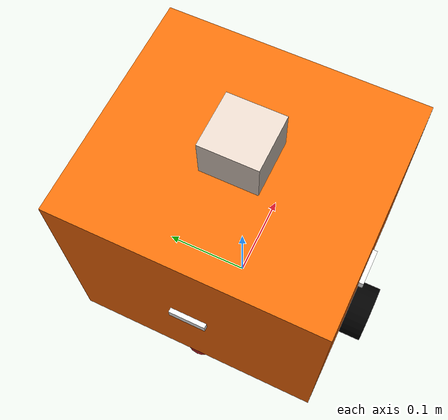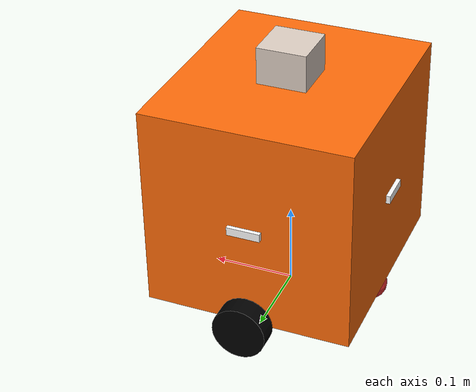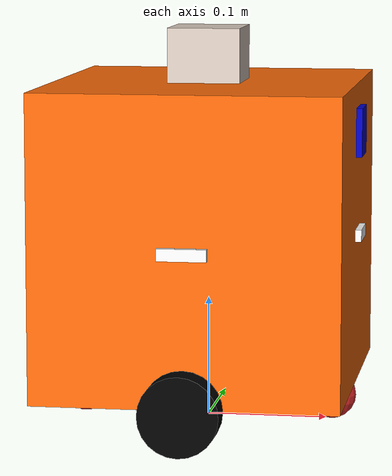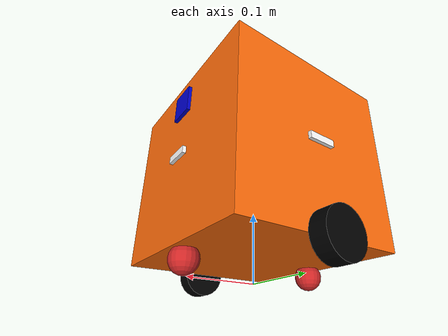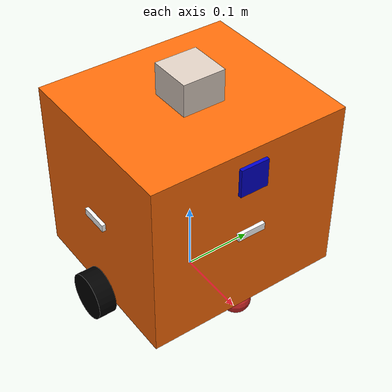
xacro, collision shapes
<?xml version="1.0" ?>
<robot name="piyabot" xmlns:xacro="http://ros.org/wiki/xacro">

  <xacro:property name="PI" value="3.1415926535897931"/>

  <xacro:property name="chassisHeight" value="0.25"/>
  <xacro:property name="chassisLength" value="0.25"/>
  <xacro:property name="chassisWidth" value="0.28"/>
  <xacro:property name="chassisMass" value="1.0"/>

  <xacro:property name="casterRadius" value="0.02"/>
  <xacro:property name="casterMass" value="0.1"/>

  <xacro:property name="wheelWidth" value="0.025"/>
  <xacro:property name="wheelRadius" value="0.0325"/>
  <xacro:property name="wheelPos" value="0"/>
  <xacro:property name="wheelMass" value="0.2"/>

  <xacro:property name="cameraHeight" value="0.04"/>
  <xacro:property name="cameraLength" value="0.01"/>
  <xacro:property name="cameraWidth" value="0.04"/>
  <xacro:property name="cameraMass" value="0.1"/>

  <xacro:property name="rplidarSize" value="0.06"/>
  <xacro:property name="rplidarMass" value="0.2"/>

  <xacro:property name="supportRplidarSize" value="0.1"/>
  <xacro:property name="supportRplidarHeight" value="0.04"/>
  <xacro:property name="supportRplidarMass" value="0.2"/>

  <xacro:property name="sonarHeight" value="0.01"/>
  <xacro:property name="sonarLength" value="0.01"/>
  <xacro:property name="sonarWidth" value="0.04"/>
  <xacro:property name="sonarMass" value="1e-5"/>

  <xacro:include filename="$(find bot_description)/urdf/materials.xacro"/>
  <xacro:include filename="$(find bot_description)/urdf/macros.xacro"/>
  <xacro:include filename="$(find bot_description)/urdf/piyabot_delta.gazebo.xacro"/>

  <link name="base_footprint"/>

  <joint name="base_joint" type="fixed">
    <parent link="base_footprint"/>
    <child link="chassis"/>
    <origin xyz="0 0 ${wheelRadius}" rpy="0 0 0"/>
  </joint>

  <link name="chassis">
    <collision>
      <origin xyz="0 0 ${chassisHeight/2}" rpy="0 0 0"/>
      <geometry>
	      <box size="${chassisLength} ${chassisWidth} ${chassisHeight}"/>
      </geometry>
    </collision>

    <visual>
      <origin xyz="0 0 ${chassisHeight/2}" rpy="0 0 0"/>
      <geometry>
	      <box size="${chassisLength} ${chassisWidth} ${chassisHeight}"/>
      </geometry>
      <material name="orange"/>
    </visual>

    <inertial>
      <origin xyz="0 0 ${chassisHeight/2}" rpy="0 0 0"/>
      <mass value="${chassisMass}"/>
      <xacro:box_inertia m="${chassisMass}" x="${chassisLength}" y="${chassisWidth}" z="${chassisHeight}"/>
    </inertial>
  </link>

  <joint name="imu_joint" type="fixed">
    <parent link="base_footprint"/>
    <child link="imu_link"/>
    <origin xyz="0 0 0" rpy="0 0 0"/>
  </joint>
  <link name="imu_link"/>

  <joint name="fixed_caster_back" type="fixed">
    <parent link="chassis"/>
    <child link="caster_back_wheel"/>
    <origin xyz="-${chassisLength/2 - casterRadius} 0 ${-wheelRadius + casterRadius}" rpy="0 0 0"/>
  </joint>

  <link name="caster_back_wheel">
    <collision>
      <origin xyz="0 0 0" rpy="0 0 0"/>
      <geometry>
	      <sphere radius="${casterRadius}"/>
      </geometry>
    </collision>

    <visual>
      <origin xyz="0 0 0" rpy="0 0 0"/>
      <geometry>
	      <sphere radius="${casterRadius}"/>
      </geometry>
    </visual>

    <inertial>
      <origin xyz="0 0 0" rpy="0 0 0"/>
      <mass value="${casterMass}"/>
      <xacro:sphere_inertia m="${casterMass}" r="${casterRadius}"/>
    </inertial>
  </link>

  <joint name="fixed_caster_front" type="fixed">
    <parent link="chassis"/>
    <child link="caster_front_wheel"/>
    <origin xyz="${chassisLength/2 - casterRadius} 0 ${-wheelRadius + casterRadius}" rpy="0 0 0"/>
  </joint>

  <link name="caster_front_wheel">
    <collision>
      <origin xyz="0 0 0" rpy="0 0 0"/>
      <geometry>
	      <sphere radius="${casterRadius}"/>
      </geometry>
    </collision>

    <visual>
      <origin xyz="0 0 0" rpy="0 0 0"/>
      <geometry>
	      <sphere radius="${casterRadius}"/>
      </geometry>
    </visual>

    <inertial>
      <origin xyz="0 0 0" rpy="0 0 0"/>
      <mass value="${casterMass}"/>
      <xacro:sphere_inertia m="${casterMass}" r="${casterRadius}"/>
    </inertial>
  </link>

  <xacro:wheel lr="left" tY="-1"/>
  <xacro:wheel lr="right" tY="1"/>

  <joint name="camera_joint" type="fixed">
    <origin xyz="${chassisLength/2} 0 ${chassisHeight -cameraHeight/2 -0.02}" rpy="0 0 0"/>
    <parent link="chassis"/>
    <child link="camera"/>
  </joint>

  <link name="camera">
    <collision>
      <origin xyz="0 0 0" rpy="0 0 0"/>
      <geometry>
	        <box size="${cameraLength} ${cameraWidth} ${cameraHeight}"/>
      </geometry>
    </collision>

    <visual>
      <origin xyz="0 0 0" rpy="0 0 0"/>
      <geometry>
	        <box size="${cameraLength} ${cameraWidth} ${cameraHeight}"/>
      </geometry>
      <material name="blue"/>
    </visual>

    <inertial>
      <mass value="${cameraMass}" />
      <origin xyz="0 0 0" rpy="0 0 0"/>
      <xacro:box_inertia m="${cameraMass}" x="${cameraLength}" y="${cameraWidth}" z="${cameraHeight}" />
    </inertial>
  </link>

  <joint name="rplidar_joint" type="fixed">
    <origin xyz="0 0 ${chassisHeight + rplidarSize/4}" rpy="0 0 0"/>
    <parent link="chassis"/>
    <child link="rplidar"/>
  </joint>

  <link name="rplidar">
    <collision>
      <origin xyz="0 0 0" rpy="0 0 0"/>
      <geometry>
	        <box size="${rplidarSize} ${rplidarSize} ${rplidarSize}"/>
      </geometry>
    </collision>

    <visual>
      <origin xyz="0 0 0" rpy="0 0 ${PI}"/>
      <geometry>
          <mesh filename="package://bot_description/meshes/sensors/lds.stl" scale="0.001 0.001 0.001"/>
      </geometry>
      <material name="brown"/>
    </visual>

    <inertial>
      <mass value="${rplidarMass}" />
      <origin xyz="0 0 0" rpy="0 0 0"/>
      <xacro:box_inertia m="${rplidarMass}" x="${rplidarSize}" y="${rplidarSize}" z="${rplidarSize}" />
    </inertial>
  </link>

  <joint name="sonar_front_joint" type="fixed">
      <origin rpy="0 0 0" xyz="${chassisLength/2} 0 ${chassisHeight/2}" />
      <parent link="chassis"/>
      <child link="base_sonar_front"/>
  </joint>

  <link name="base_sonar_front">
      <collision>
        <origin xyz="0 0 0" rpy="0 0 0"/>
        <geometry>
          <box size="${sonarLength} ${sonarWidth} ${sonarHeight}"/>
        </geometry>
      </collision>
      <visual>
       <origin xyz="-0.01 -0.0225 -0.01" rpy="${PI/2} 0 ${PI/2}"/>
        <geometry>
          <mesh filename="package://bot_description/meshes/sensors/HC-SR04.stl" scale="0.001 0.001 0.001"/>
        </geometry>
        <material name="white"/>
      </visual>
      <inertial>
        <mass value="1e-5" />
        <origin xyz="0 0 0" rpy="0 0 0"/>
        <xacro:box_inertia m="${sonarMass}" x="${sonarLength}" y="${sonarWidth}" z="${sonarHeight}"/>
      </inertial>

  </link>

   <joint name="sonar_back_joint" type="fixed">
      <axis xyz="0 1 0" />
      <origin rpy="0 0 ${PI}" xyz="-${chassisLength/2} 0 ${chassisHeight/2}" />
      <parent link="chassis"/>
      <child link="base_sonar_back"/>
  </joint>
  <link name="base_sonar_back">
      <collision>
        <origin xyz="0 0 0" rpy="0 0 0"/>
        <geometry>
          <box size="${sonarLength} ${sonarWidth} ${sonarHeight}"/>
        </geometry>
      </collision>
      <visual>
        <origin xyz="-0.01 -0.0225 -0.01" rpy="${PI/2} 0 ${PI/2}"/>
        <geometry>
          <mesh filename="package://bot_description/meshes/sensors/HC-SR04.stl" scale="0.001 0.001 0.001"/>
        </geometry>
        <material name="white"/>
      </visual>
      <inertial>
        <mass value="1e-5" />
        <origin xyz="0 0 0" rpy="0 0 0"/>
        <xacro:box_inertia m="${sonarMass}" x="${sonarLength}" y="${sonarWidth}" z="${sonarHeight}"/>
      </inertial>

  </link>

  <joint name="sonar_left_joint" type="fixed">
      <origin rpy="0 0 ${PI/2}" xyz="0 ${chassisWidth/2} ${chassisHeight/2}" />
      <parent link="chassis"/>
      <child link="base_sonar_left"/>
  </joint>
  <link name="base_sonar_left">
      <collision>
        <origin xyz="0 0 0" rpy="0 0 0"/>
        <geometry>
          <box size="${sonarLength} ${sonarWidth} ${sonarHeight}"/>
        </geometry>
      </collision>
      <visual>
        <origin xyz="-0.01 -0.0225 -0.01" rpy="${PI/2} 0 ${PI/2}"/>
        <geometry>
          <mesh filename="package://bot_description/meshes/sensors/HC-SR04.stl" scale="0.001 0.001 0.001"/>
        </geometry>
        <material name="white"/>
      </visual>
      <inertial>
        <mass value="1e-5" />
        <origin xyz="0 0 0" rpy="0 0 0"/>
        <xacro:box_inertia m="${sonarMass}" x="${sonarLength}" y="${sonarWidth}" z="${sonarHeight}"/>
      </inertial>

  </link>

  <joint name="sonar_right_joint" type="fixed">
      <origin rpy="0 0 -${PI/2}" xyz="0 -${chassisWidth/2} ${chassisHeight/2}" />
      <parent link="chassis"/>
      <child link="base_sonar_right"/>
  </joint>
  <link name="base_sonar_right">
      <collision>
        <origin xyz="0 0 0" rpy="0 0 0"/>
        <geometry>
          <box size="${sonarLength} ${sonarWidth} ${sonarHeight}"/>
        </geometry>
      </collision>
      <visual>
        <origin xyz="-0.01 -0.0225 -0.01" rpy="${PI/2} 0 ${PI/2}"/>
        <geometry>
          <mesh filename="package://bot_description/meshes/sensors/HC-SR04.stl" scale="0.001 0.001 0.001"/>
        </geometry>
        <material name="white"/>
      </visual>
      <inertial>
        <mass value="1e-5" />
        <origin xyz="0 0 0" rpy="0 0 0"/>
        <xacro:box_inertia m="${sonarMass}" x="${sonarLength}" y="${sonarWidth}" z="${sonarHeight}"/>
      </inertial>

  </link>

</robot>

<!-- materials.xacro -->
<robot >

  <material name="black">
    <color rgba="0.0 0.0 0.0 1.0"/>
  </material>

  <material name="blue">
    <color rgba="0.0 0.0 0.8 1.0"/>
  </material>

  <material name="green">
    <color rgba="0.0 0.8 0.0 1.0"/>
  </material>

  <material name="grey">
    <color rgba="0.2 0.2 0.2 1.0"/>
  </material>

  <material name="orange">
    <color rgba="${255/255} ${108/255} ${10/255} 1.0"/>
  </material>

  <material name="brown">
    <color rgba="${222/255} ${207/255} ${195/255} 1.0"/>
  </material>

  <material name="red">
    <color rgba="0.8 0.0 0.0 1.0"/>
  </material>

  <material name="white">
    <color rgba="1.0 1.0 1.0 1.0"/>
  </material>

</robot>

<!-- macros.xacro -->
<robot xmlns:xacro="http://ros.org/wiki/xacro">

     <xacro:macro name="cylinder_inertia" params="m r h">
        <inertia  ixx="${m*(3*r*r+h*h)/12}" ixy = "0" ixz = "0"
                  iyy="${m*(3*r*r+h*h)/12}" iyz = "0"
                  izz="${m*r*r/2}" />
      </xacro:macro>

      <xacro:macro name="box_inertia" params="m x y z">
        <inertia  ixx="${m*(y*y+z*z)/12}" ixy = "0" ixz = "0"
                  iyy="${m*(x*x+z*z)/12}" iyz = "0"
                  izz="${m*(x*x+z*z)/12}" />
      </xacro:macro>

      <xacro:macro name="sphere_inertia" params="m r">
        <inertia  ixx="${2*m*r*r/5}" ixy = "0" ixz = "0"
                  iyy="${2*m*r*r/5}" iyz = "0"
                  izz="${2*m*r*r/5}" />
      </xacro:macro>

     <xacro:macro name="wheel" params="lr tY">

       <link name="${lr}_wheel">
        <collision>
          <origin xyz="0 0 0" rpy="0 ${PI/2} ${PI/2}" />
          <geometry>
           <cylinder length="${wheelWidth}" radius="${wheelRadius}"/>
          </geometry>
        </collision>

        <visual>
          <origin xyz="0 0 0" rpy="0 ${PI/2} 0" />
          <geometry>
           <mesh filename="package://bot_description/meshes/wheels/${lr}_tire.stl" scale="0.001 0.001 0.001"/>
          </geometry>
          <material name="black"/>
        </visual>

        <inertial>
          <origin xyz="0 0 0" rpy="0 ${PI/2} ${PI/2}" />
          <mass value="${wheelMass}"/>
          <xacro:cylinder_inertia m="${wheelMass}" r="${wheelRadius}" h="${wheelWidth}"/>
        </inertial>
       </link>

        <gazebo reference="${lr}_wheel">
          <mu1 value="10.0"/>
          <mu2 value="10.0"/>
          <kp  value="10000000.0" />
          <kd  value="1.0" />
          <fdir1 value="1 0 0"/>
          <material>Gazebo/Black</material>
        </gazebo>

       <joint name="${lr}_wheel_hinge" type="continuous">
          <parent link="chassis"/>
          <child link="${lr}_wheel"/>
          <origin xyz="${+wheelPos} ${tY*wheelWidth/2+tY*chassisWidth/2} 0" rpy="0 0 0"/>
          <axis xyz="0 1 0" rpy="0 0 0" />
          <limit effort="100" velocity="100"/>
          <joint_properties damping="0.0" friction="0.0"/>
        </joint>

      <transmission name="${lr}_trans">
        <type>transmission_interface/SimpleTransmission</type>
        <joint name="${lr}_wheel_hinge">
           <hardwareInterface>hardware_interface/EffortJointInterface</hardwareInterface>
        </joint>
        <actuator name="${lr}Motor">
          <hardwareInterface>hardware_interface/EffortJointInterface</hardwareInterface>
          <mechanicalReduction>10</mechanicalReduction>
        </actuator>
      </transmission>

     </xacro:macro>
</robot>
